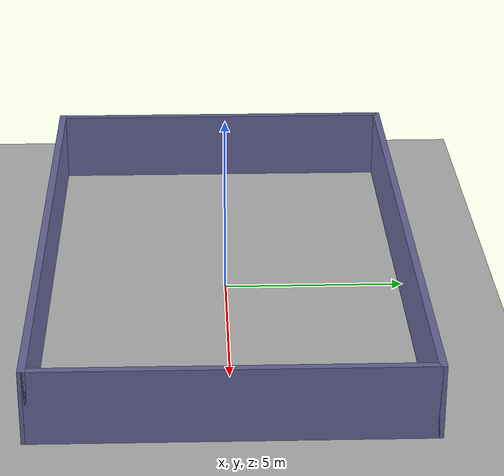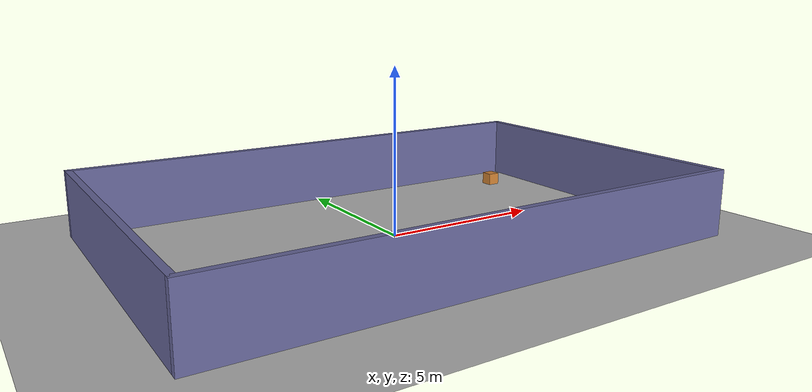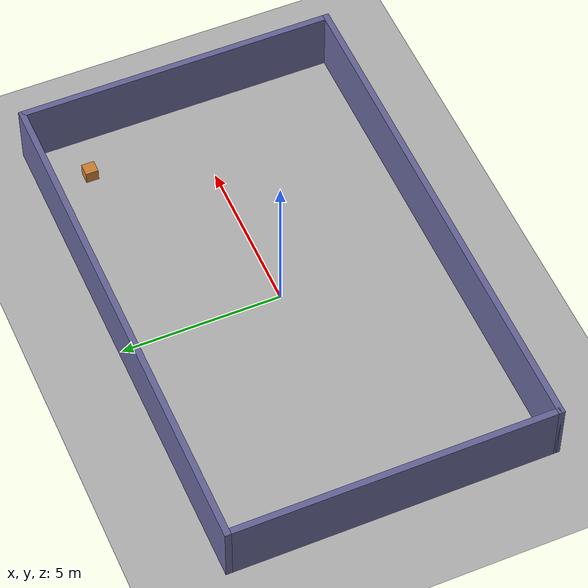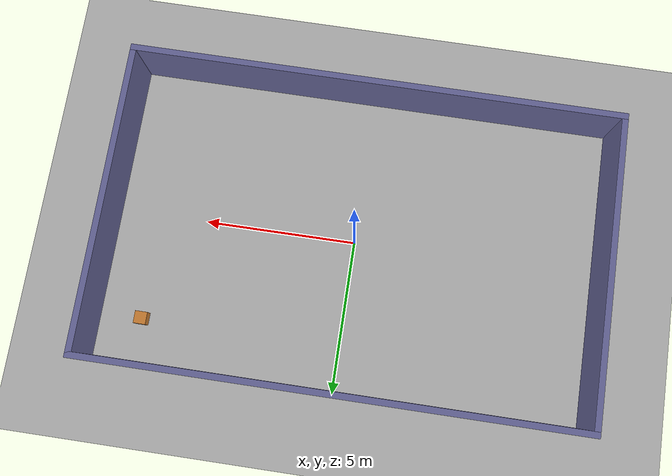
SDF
<?xml version="1.0" ?>
<sdf version='1.8'>
  <world name='empty_room'>

    <physics name='4ms' type='ignored'>
      <max_step_size>0.004</max_step_size>
      <real_time_factor>1</real_time_factor>
    </physics>

    <plugin filename="ignition-gazebo-physics-system"
            name="ignition::gazebo::systems::Physics"/>
    <plugin filename="ignition-gazebo-user-commands-system"
            name="ignition::gazebo::systems::UserCommands"/>
    <plugin filename="ignition-gazebo-scene-broadcaster-system"
            name="ignition::gazebo::systems::SceneBroadcaster"/>
    <plugin filename="ignition-gazebo-sensors-system"
            name="ignition::gazebo::systems::Sensors">
      <render_engine>ogre2</render_engine>
    </plugin>
    <plugin filename="ignition-gazebo-contact-system"
            name="ignition::gazebo::systems::Contact"/>
    <plugin filename="ignition-gazebo-imu-system"
            name="ignition::gazebo::systems::Imu"/>

    <light name='sun' type='directional'>
      <pose>0 0 10 0 0 0</pose>
      <cast_shadows>true</cast_shadows>
      <intensity>1</intensity>
      <direction>-0.5 0.1 -0.9</direction>
      <diffuse>0.8 0.8 0.8 1</diffuse>
      <specular>0.2 0.2 0.2 1</specular>
    </light>

    <!-- Ground plane -->
    <model name='ground_plane'>
      <static>true</static>
      <link name='link'>
        <collision name='collision'>
          <geometry><plane><normal>0 0 1</normal><size>100 100</size></plane></geometry>
        </collision>
        <visual name='visual'>
          <geometry><plane><normal>0 0 1</normal><size>100 100</size></plane></geometry>
          <material>
            <ambient>0.7 0.7 0.7 1</ambient>
            <diffuse>0.7 0.7 0.7 1</diffuse>
          </material>
        </visual>
      </link>
    </model>

    <!-- North wall -->
    <model name='er_wall_north'><static>true</static><link name='link'>
      <pose>0 5 1 0 0 0</pose>
      <collision name='c'><geometry><box><size>16.2 0.2 2</size></box></geometry></collision>
      <visual name='v'><geometry><box><size>16.2 0.2 2</size></box></geometry>
        <material><ambient>0.4 0.4 0.6 1</ambient><diffuse>0.4 0.4 0.6 1</diffuse></material></visual>
    </link></model>

    <!-- South wall -->
    <model name='er_wall_south'><static>true</static><link name='link'>
      <pose>0 -5 1 0 0 0</pose>
      <collision name='c'><geometry><box><size>16.2 0.2 2</size></box></geometry></collision>
      <visual name='v'><geometry><box><size>16.2 0.2 2</size></box></geometry>
        <material><ambient>0.4 0.4 0.6 1</ambient><diffuse>0.4 0.4 0.6 1</diffuse></material></visual>
    </link></model>

    <!-- East wall -->
    <model name='er_wall_east'><static>true</static><link name='link'>
      <pose>8 0 1 0 0 0</pose>
      <collision name='c'><geometry><box><size>0.2 10 2</size></box></geometry></collision>
      <visual name='v'><geometry><box><size>0.2 10 2</size></box></geometry>
        <material><ambient>0.4 0.4 0.6 1</ambient><diffuse>0.4 0.4 0.6 1</diffuse></material></visual>
    </link></model>

    <!-- West wall -->
    <model name='er_wall_west'><static>true</static><link name='link'>
      <pose>-8 0 1 0 0 0</pose>
      <collision name='c'><geometry><box><size>0.2 10 2</size></box></geometry></collision>
      <visual name='v'><geometry><box><size>0.2 10 2</size></box></geometry>
        <material><ambient>0.4 0.4 0.6 1</ambient><diffuse>0.4 0.4 0.6 1</diffuse></material></visual>
    </link></model>

    <model name='er_corner_marker'><static>true</static><link name='link'>
      <pose>6.5 3.5 0.2 0 0 0</pose>
      <collision name='c'><geometry><box><size>0.4 0.4 0.4</size></box></geometry></collision>
      <visual name='v'><geometry><box><size>0.4 0.4 0.4</size></box></geometry>
        <material><ambient>0.8 0.5 0.2 1</ambient><diffuse>0.8 0.5 0.2 1</diffuse></material></visual>
    </link></model>

    <!-- Overview camera -->
    <model name='world_monitor_cam'>
      <static>true</static>
      <pose>0 0 9 0 1.5708 0</pose>
      <link name='link'>
        <sensor name='monitor_camera' type='camera'>
          <always_on>true</always_on>
          <update_rate>10</update_rate>
          <topic>world_monitor/image_raw</topic>
          <camera>
            <horizontal_fov>1.6</horizontal_fov>
            <image><width>960</width><height>540</height><format>R8G8B8</format></image>
            <clip><near>0.05</near><far>20.0</far></clip>
          </camera>
        </sensor>
      </link>
    </model>

  </world>
</sdf>
